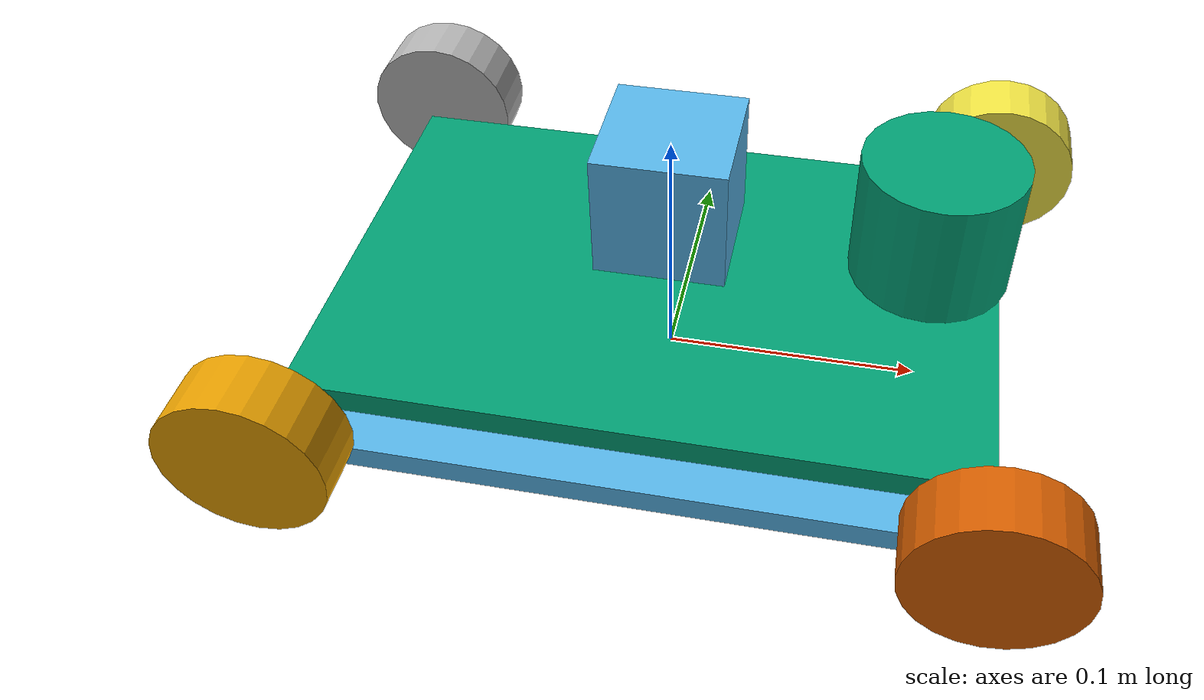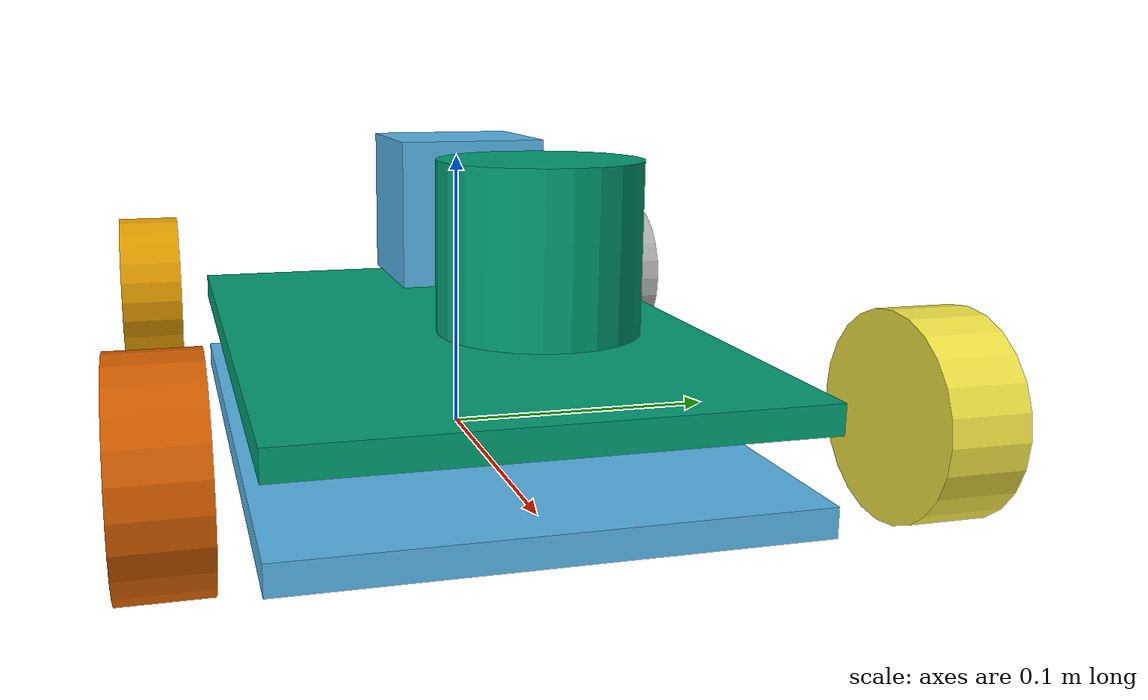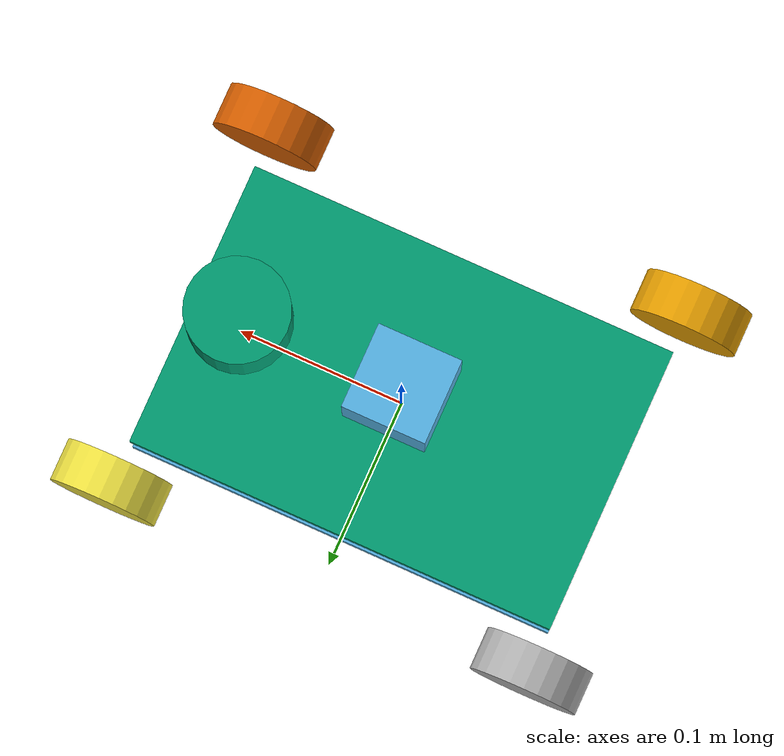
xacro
<?xml version="1.0"?>

<robot xmlns:xacro="http://www.ros.org/wiki/xacro" name="smartcar">

  <!-- Xacro properties and macros -->
  <xacro:property name="wheel_diameter" value="0.064" />
  <xacro:property name="wheel_width" value="0.025" />
  <xacro:property name="wheelbase_length" value="0.257" />
  <xacro:property name="wheelbase_width" value="0.17" />

  <xacro:property name="LiDAR_radius" value="0.03" />

  <!-- Xacro Macros -->

  <xacro:macro name="front_wheel" params="prefix parent x y z">
    <link name="front_${prefix}_wheel_link">
      <inertial>
        <mass value="0.5"/>
        <inertia ixx="0.0001" ixy="0.0" ixz="0.0" iyy="0.0001" iyz="0.0" izz="0.0002"/>
        <origin xyz="0 0 0" rpy="${pi/2} 0 0"/>
      </inertial>
      <visual>
        <origin xyz="0 0 0" rpy="${pi/2} 0 0"/>
        <geometry>
          <cylinder radius="${wheel_diameter/2}" length="${wheel_width}"/>
        </geometry>
      </visual>
      <collision>
        <origin xyz="0 0 0" rpy="${pi/2} 0 0"/>
        <geometry>
          <cylinder radius="${wheel_diameter/2}" length="${wheel_width}"/>
        </geometry>
      </collision>
    </link>

    <link name="front_${prefix}_wheel_steer_link">
      <visual>
          <geometry>
              <box size="0.01 0.01 0.01"/>
          </geometry>
          <origin xyz="0 0 0" rpy="0 0 0"/>
      </visual>

      <collision>
          <geometry>
              <box size="0.01 0.01 0.01"/>
          </geometry>
          <origin xyz="0 0 0" rpy="0 0 0"/>
      </collision>

      <inertial>
          <mass value="0.1"/>
          <origin xyz="0 0 0" rpy="0 0 0"/>
          <inertia ixx="0.00005" ixy="0.0" ixz="0.0" iyy="0.00005" iyz="0.0" izz="0.00005"/>
      </inertial>
  </link>

    <joint name="front_${prefix}_wheel_steer_joint" type="revolute">
      <origin xyz="${x} ${y} ${z}" rpy="0 0 0"/>
      <parent link="${parent}"/>
      <child link="front_${prefix}_wheel_steer_link"/>
      <axis xyz="0 0 1"/>
      <limit lower="-${45 * (pi / 180)}" upper="${45 * (pi / 180)}" effort="10" velocity="1"/>
  </joint>

  <joint name="front_${prefix}_wheel_joint" type="continuous">
    <origin xyz="0 0 0" rpy="0 0 0" />
    <parent link="front_${prefix}_wheel_steer_link"/>
    <child link="front_${prefix}_wheel_link"/>
    <axis xyz="0 1 0"/>
</joint>

  </xacro:macro>

  <xacro:macro name="back_wheel" params="prefix parent x y z">
    <link name="back_${prefix}_wheel_link">
      <inertial>
        <mass value="0.5"/>
        <inertia ixx="0.0001" ixy="0.0" ixz="0.0" iyy="0.0001" iyz="0.0" izz="0.0002"/>
        <origin xyz="0 0 0" rpy="${pi/2} 0 0"/>
      </inertial>
      <visual>
        <origin xyz="0 0 0" rpy="${pi/2} 0 0"/>
        <geometry>
          <cylinder radius="${wheel_diameter/2}" length="${wheel_width}"/>
        </geometry>
      </visual>
      <collision>
        <origin xyz="0 0 0" rpy="${pi/2} 0 0"/>
        <geometry>
          <cylinder radius="${wheel_diameter/2}" length="${wheel_width}"/>
        </geometry>
      </collision>
    </link>
    <joint name="back_${prefix}_wheel_joint" type="continuous">
      <parent link="${parent}" />
      <child link="back_${prefix}_wheel_link"/>
      <origin xyz="${x} ${y} ${z}" rpy="0 0 0"/>
      <axis xyz="0 1 0"/>
    </joint>
  </xacro:macro>

  <!-- Body -->
  <link name="base_link">
  </link>

  <link name="base_footprint">
    <inertial>
      <mass value="1"/>
      <inertia ixx="0.01" ixy="0.0" ixz="0.0" iyy="0.01" iyz="0.0" izz="0.02"/>
      <origin xyz="0 0 0"/>
    </inertial>
    <visual>
      <geometry>
        <box size="${wheelbase_length} ${wheelbase_width} 0.01"/>
      </geometry>
    </visual>
  </link>

  <joint name="base_footprint_joint" type="fixed">
    <parent link="base_link" />
    <child link="base_footprint"/>
  </joint>

  <link name="chassis_link">
    <inertial>
      <mass value="3.0"/>
      <inertia ixx="0.01" ixy="0.0" ixz="0.0" iyy="0.01" iyz="0.0" izz="0.02"/>
      <origin xyz="0 0 1"/>
    </inertial>
    <visual>
      <geometry>
        <box size="${wheelbase_length} ${wheelbase_width} 0.01"/>
      </geometry>
    </visual>
  </link>

  <joint name="chassis_joint" type="fixed">
    <parent link="base_link" />
    <child link="chassis_link"/>
    <origin xyz="0 0 ${wheel_diameter / 2}"/>
  </joint>

  <xacro:front_wheel prefix="left" parent="base_link" x="${wheelbase_length / 2}" y="${wheelbase_width / 2 + wheel_width}" z="${wheel_diameter / 2}"/>
  <xacro:front_wheel prefix="right" parent="base_link" x="${wheelbase_length / 2}" y="-${wheelbase_width / 2 + wheel_width}" z="${wheel_diameter / 2}"/>
  <xacro:back_wheel prefix="left" parent="base_link" x="-${wheelbase_length / 2}" y="${wheelbase_width / 2 + wheel_width}" z="${wheel_diameter / 2}"/>
  <xacro:back_wheel prefix="right" parent="base_link" x="-${wheelbase_length / 2}" y="-${wheelbase_width / 2 + wheel_width}" z="${wheel_diameter / 2}"/>

  <!--Sensors-->

  <!--IMU-->
  <link name="imu_link">
    <visual>
      <geometry>
        <box size="0.05 0.05 0.05"/>
      </geometry>
    </visual>

    <collision>
      <origin xyz="0 0 0" rpy="0 0 0"/>
      <geometry>
          <box size="0.1 0.1 0.1"/>
      </geometry>
    </collision>

    <inertial>
      <mass value="0.05"/>
      <inertia ixx="0.01" ixy="0.0" ixz="0.0" iyy="0.01" iyz="0.0" izz="0.02"/>
      <origin xyz="0 0 0"/>
    </inertial>
  </link>

  <joint name="imu_joint" type="fixed">
    <parent link="base_link" />
    <child link="imu_link"/>
    <origin xyz="0 0 ${wheel_diameter / 2 + 0.05}"/>
  </joint>

  <gazebo reference="imu_link">
    <sensor type="imu" name="imu_sensor">
      <always_on>true</always_on>
      <update_rate>30.0</update_rate>
      <plugin name="gazebo_ros_imu" filename="libgazebo_ros_imu_sensor.so">
        <ros>
          <remapping>~/out:=/imu_data</remapping>
        </ros>
      </plugin>
    </sensor>
  </gazebo>

  <!-- LiDAR -->

  <link name="sllidar_base_link">
    <visual>
      <geometry>
        <cylinder radius="${LiDAR_radius}" length="0.05"/>
      </geometry>
    </visual>

    <collision>
      <origin xyz="0 0 0" rpy="0 0 0"/>
      <geometry>
        <cylinder radius="${LiDAR_radius}" length="0.05"/>
      </geometry>
    </collision>

    <inertial>
      <mass value="0.05"/>
      <inertia ixx="0.01" ixy="0.0" ixz="0.0" iyy="0.01" iyz="0.0" izz="0.02"/>
      <origin xyz="0 0 0"/>
    </inertial>
  </link>

  <joint name="lidar_joint" type="fixed">
    <parent link="base_link" />
    <child link="sllidar_base_link"/>
    <origin xyz="${wheelbase_length / 2 - LiDAR_radius} 0 ${wheel_diameter / 2 + 0.05}"/>
  </joint>

  <gazebo reference="sllidar_base_link">
    <sensor name="lidar" type="ray">
      <pose> 0 0 0 0 0 0 </pose>
      <visualize>true</visualize>
      <update_rate>10</update_rate>
      <ray>
          <scan>
              <horizontal>
                  <samples>360</samples>
                  <min_angle>-${pi}</min_angle>
                  <max_angle>${pi}</max_angle>
              </horizontal>
          </scan>
          <range>
              <min>0.3</min>
              <max>12</max>
          </range>
      </ray>
      <plugin name="lidar_plugin" filename="libgazebo_ros_ray_sensor.so">
          <ros>
              <argument>~/out:=scan</argument>
          </ros>
          <output_type>sensor_msgs/LaserScan</output_type>
          <frame_name>sllidar_base_link</frame_name>
      </plugin>
  </sensor>

  </gazebo>

  <gazebo>
    <plugin name="car_gazebo_plugin" filename="libcar_gazebo_plugin.so"></plugin>
  </gazebo>

</robot>
